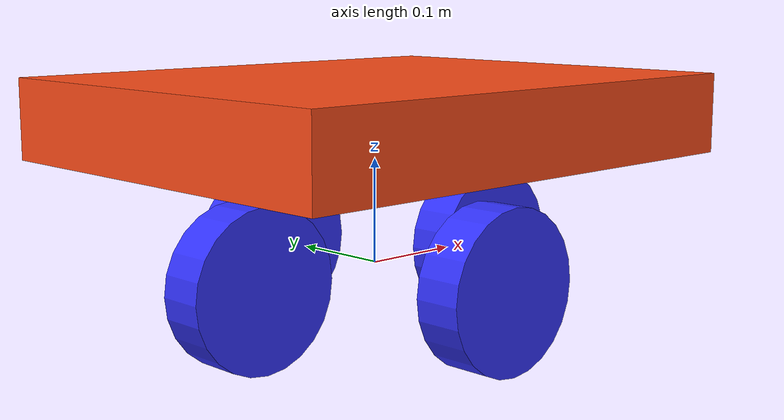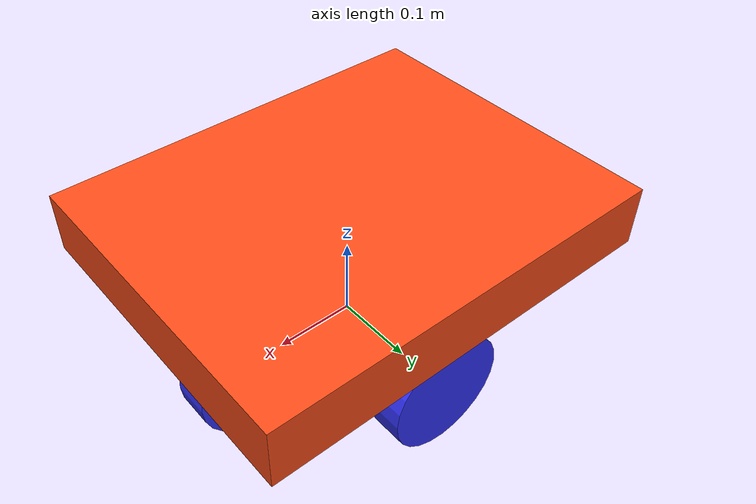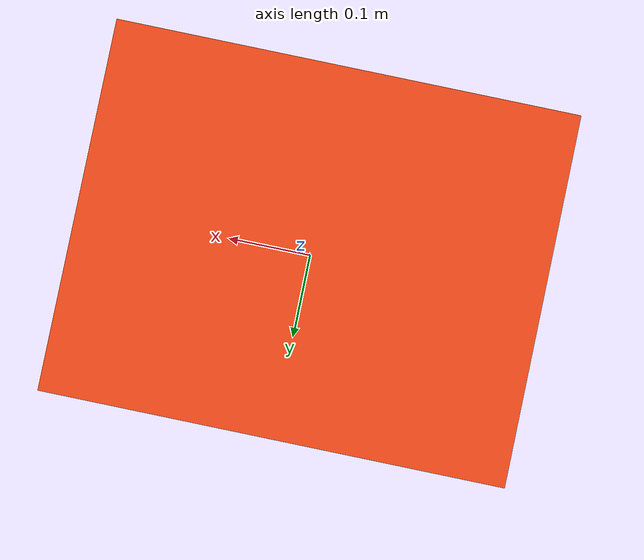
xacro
<?xml version="1.0"?>
<robot xmlns:xacro="http://www.ros.org/wiki/xacro" >

    <xacro:property name="chassis_length" value="0.508"/>
    <xacro:property name="chassis_width" value="0.406"/>
    <xacro:property name="chassis_height" value="0.076"/>
    <xacro:property name="chassis_mass" value="1.0"/>
    <xacro:property name="wheel_radius" value="0.075"/>
    <xacro:property name="wheel_thickness" value="0.045"/>
    <xacro:property name="wheel_mass" value="0.05"/>
    <xacro:property name="wheel_offset_x" value="0.0"/>
    <xacro:property name="wheel_offset_y" value="0.152"/>
    <xacro:property name="wheel_offset_z" value="0.089"/>
    <xacro:property name="caster_wheel_radius" value="0.075"/>
    <xacro:property name="caster_wheel_mass" value="0.01"/>
    <xacro:property name="caster_wheel_offset_x" value="0.150"/>
    <xacro:property name="caster_wheel_offset_y" value="0.0"/>
    <xacro:property name="caster_wheel_offset_z" value=".089"/>

    <material name="white">
        <color rgba="1 1 1 1" />
    </material>

    <material name="orange">
        <color rgba="1 0.3 0.1 1"/>
    </material>

    <material name="blue">
        <color rgba="0.2 0.2 1 1"/>
    </material>

    <material name="black">
        <color rgba="0 0 0 1"/>
    </material>

    <material name="red">
        <color rgba="1 0 0 1"/>
    </material>

    <!-- BASE LINK -->

    <link name="base_link">

    </link>

    <!-- CHASSIS LINK -->

    <joint name="chassis_joint" type="fixed">
        <parent link="base_link"/>
        <child link="chassis"/>
        <origin xyz="0 0 0"/>
    </joint>

    <link name="chassis">
        <visual>
            <origin xyz="0 0 .140"/>
            <geometry>
                <box size="${chassis_length} ${chassis_width} ${chassis_height}"/>
            </geometry>
            <material name="orange"/>
        </visual>
        <collision>
            <origin xyz="${chassis_length/2} 0 ${chassis_height/2}"/>
            <geometry>
                <box size="${chassis_length} ${chassis_width} ${chassis_height}"/>
            </geometry>
        </collision>
    </link>

    <!-- LEFT WHEEL LINK -->

    <joint name="left_wheel_joint" type="fixed">
        <parent link="base_link"/>
        <child link="left_wheel"/>
        <origin xyz="0 ${wheel_offset_y} 0" rpy="-${pi/2} 0 0" />
        <axis xyz="0 0 1"/>
    </joint>

    <link name="left_wheel">
        <visual>
            <geometry>
                <cylinder radius="${wheel_radius}" length="${wheel_thickness}"/>
            </geometry>
            <material name="blue"/>
        </visual>
        <collision>
            <geometry>
                <sphere radius="${wheel_radius}"/>
            </geometry>
        </collision>
    </link>

    <!-- RIGHT WHEEL LINK -->

    <joint name="right_wheel_joint" type="fixed">
        <parent link="base_link"/>
        <child link="right_wheel"/>
        <origin xyz="0 ${-wheel_offset_y} 0" rpy="${pi/2} 0 0" />
        <axis xyz="0 0 -1"/>
    </joint>

    <link name="right_wheel">
        <visual>
            <geometry>
                <cylinder radius="${wheel_radius}" length="${wheel_thickness}"/>
            </geometry>
            <material name="blue"/>
        </visual>
        <collision>
            <geometry>
                <sphere radius="${wheel_radius}"/>
            </geometry>
        </collision>
    </link>

    <!-- CASTER WHEEL LINK -->

    <joint name="fcaster_wheel_joint" type="fixed">
        <parent link="base_link"/>
        <child link="fcaster_wheel"/>
        <origin xyz="${caster_wheel_offset_x} 0 0" rpy="${pi/2} 0 0" />
        <axis xyz="0 0 -1"/>
    </joint>

    <link name="fcaster_wheel">
        <visual>
            <geometry>
                <cylinder radius="${caster_wheel_radius}" length="${wheel_thickness}"/>
            </geometry>
            <material name="blue"/>
        </visual>
        <collision>
            <geometry>
                <sphere radius="${caster_wheel_radius}"/>
            </geometry>
        </collision>
    </link>

    <!-- CASTER WHEEL LINK -->

    <joint name="rcaster_wheel_joint" type="fixed">
        <parent link="base_link"/>
        <child link="rcaster_wheel"/>
        <origin xyz="${-caster_wheel_offset_x} 0 0" rpy="${pi/2} 0 0" />
        <axis xyz="0 0 -1"/>
    </joint>

    <link name="rcaster_wheel">
        <visual>
            <geometry>
                <cylinder radius="${caster_wheel_radius}" length="${wheel_thickness}"/>
            </geometry>
            <material name="blue"/>
        </visual>
        <collision>
            <geometry>
                <sphere radius="${caster_wheel_radius}"/>
            </geometry>
        </collision>
    </link>

</robot>
